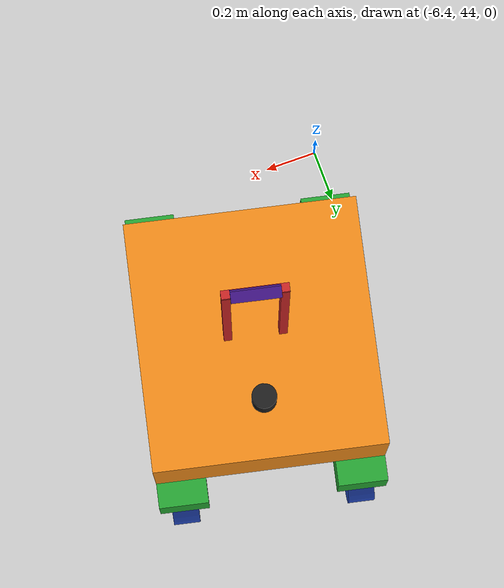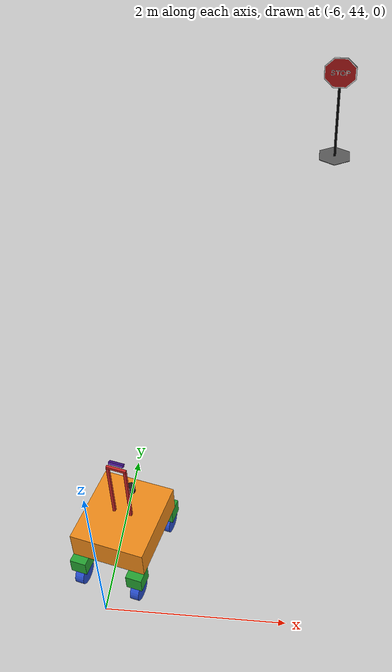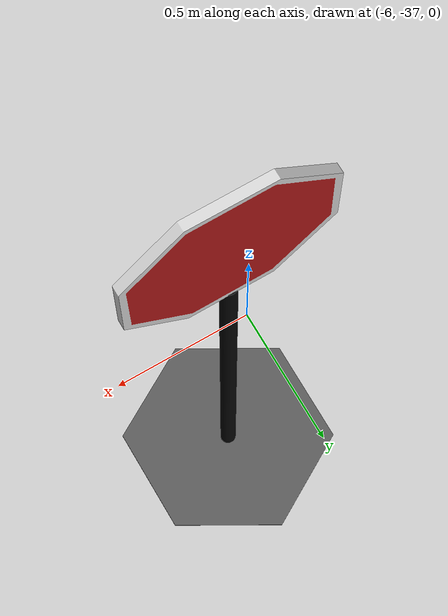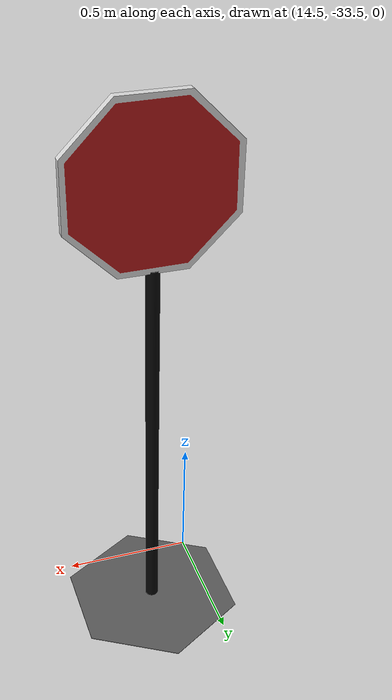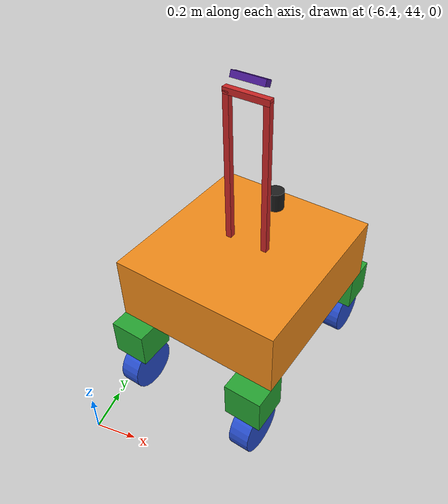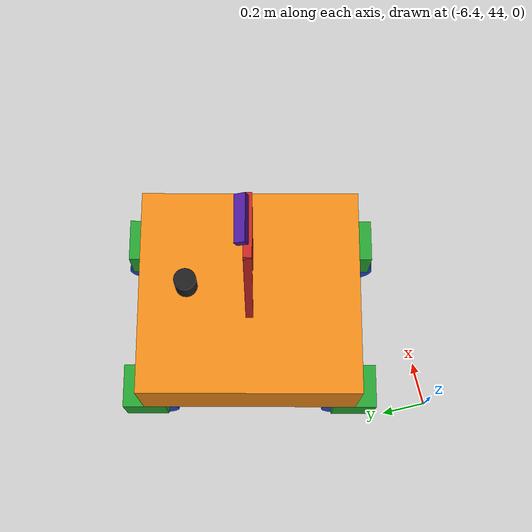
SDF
<sdf version="1.7">
 <world name="self_drive_v1">
  <physics type="ode">
   <max_step_size>0.00625</max_step_size>
   <real_time_factor>1</real_time_factor>
   <real_time_update_rate>160</real_time_update_rate>
  </physics>
  <light name="user_directional_light_0" type="directional">
   <pose>0 -60 1 1 -0 0</pose>
   <diffuse>0.5 0.5 0.5 1</diffuse>
   <specular>0.1 0.1 0.1 1</specular>
   <direction>0.1 0.1 -0.9</direction>
   <attenuation>
    <range>20</range>
    <constant>0.5</constant>
    <linear>0.01</linear>
    <quadratic>0.001</quadratic>
   </attenuation>
   <spot><inner_angle>0</inner_angle><outer_angle>0</outer_angle><falloff>0</falloff></spot>
  </light>
  <light name="user_directional_light_1" type="directional">
   <pose>40 0 1 -1.68478 -0.346199 -2.21355</pose>
   <diffuse>0.5 0.5 0.5 1</diffuse>
   <specular>0.1 0.1 0.1 1</specular>
   <direction>0.1 0.1 -0.9</direction>
   <attenuation>
    <range>20</range>
    <constant>0.5</constant>
    <linear>0.01</linear>
    <quadratic>0.001</quadratic>
   </attenuation>
   <spot><inner_angle>0</inner_angle><outer_angle>0</outer_angle><falloff>0</falloff></spot>
  </light>
  <light name="user_directional_light_2" type="directional">
   <pose>0 68 1 -2.05749 0 0</pose>
   <diffuse>0.5 0.5 0.5 1</diffuse>
   <specular>0.1 0.1 0.1 1</specular>
   <direction>0.1 0.1 -0.9</direction>
   <attenuation>
    <range>20</range>
    <constant>0.5</constant>
    <linear>0.01</linear>
    <quadratic>0.001</quadratic>
   </attenuation>
   <spot><inner_angle>0</inner_angle><outer_angle>0</outer_angle><falloff>0</falloff></spot>
  </light>
  <light name="user_directional_light_3" type="directional">
   <pose>-43 0 1 0 -1.44116 0</pose>
   <diffuse>0.5 0.5 0.5 1</diffuse>
   <specular>0.1 0.1 0.1 1</specular>
   <direction>0.1 0.1 -0.9</direction>
   <attenuation>
    <range>20</range>
    <constant>0.5</constant>
    <linear>0.01</linear>
    <quadratic>0.001</quadratic>
   </attenuation>
   <spot><inner_angle>0</inner_angle><outer_angle>0</outer_angle><falloff>0</falloff></spot>
  </light>
  <scene>
   <sky><clouds><speed>12</speed></clouds></sky>
   <shadows>1</shadows>
   <ambient>0.2 0.2 0.2 1</ambient>
   <background>1 1 1 1</background>
   <grid>0</grid>
   <origin_visual>0</origin_visual>
  </scene>
  <light name="sun" type="directional">
   <pose>0 0 10 0 -0 0</pose>
   <diffuse>0.8 0.8 0.8 1</diffuse>
   <specular>0.2 0.2 0.2 1</specular>
   <attenuation>
    <range>1000</range>
    <constant>0.9</constant>
    <linear>0.01</linear>
    <quadratic>0.001</quadratic>
   </attenuation>
   <direction>-0.5 0.1 -0.9</direction>
   <spot><inner_angle>0</inner_angle><outer_angle>0</outer_angle><falloff>0</falloff></spot>
  </light>
  <model name="igvc_ground">
   <static>1</static>
   <link name="link">
    <collision name="collision">
     <geometry><plane><normal>0 0 1</normal><size>80 128</size></plane></geometry>
     <surface><friction><ode><mu>140</mu><mu2>140</mu2></ode></friction></surface>
    </collision>
    <visual name="visual">
     <cast_shadows>0</cast_shadows>
     <geometry><plane><normal>0 0 1</normal><size>80 128</size></plane></geometry>
     <material>
      <script>
       <uri>model://igvc_ground/materials/scripts</uri>
       <uri>model://igvc_ground/materials/textures</uri>
       <name>asphalt_ground/Image</name>
      </script>
     </material>
    </visual>
   </link>
   <pose>0 0.5 0 0 -0 0</pose>
  </model>
  <gravity>0 0 -9.8</gravity>
  <magnetic_field>6e-06 2.3e-05 -4.2e-05</magnetic_field>
  <atmosphere type="adiabatic"/>
  <audio><device>default</device></audio>
  <spherical_coordinates>
   <surface_model>EARTH_WGS84</surface_model>
   <latitude_deg>0</latitude_deg>
   <longitude_deg>0</longitude_deg>
   <elevation>0</elevation>
   <heading_deg>0</heading_deg>
  </spherical_coordinates>
  <model name="sign_stop_0">
   <static>1</static>
   <link name="sign">
    <visual name="visual">
     <geometry>
      <mesh><uri>model://sign_stop/materials/meshes/sign_stop.dae</uri><scale>0.001 0.001 0.001</scale></mesh>
     </geometry>
    </visual>
    <collision name="collision">
     <geometry>
      <mesh><uri>model://sign_stop/materials/meshes/sign_stop.dae</uri><scale>0.001 0.001 0.001</scale></mesh>
     </geometry>
    </collision>
   </link>
   <pose>15.0208 -33.0904 0 0 -0 0</pose>
  </model>
  <model name="sign_stop_1">
   <static>1</static>
   <link name="sign">
    <visual name="visual">
     <geometry>
      <mesh><uri>model://sign_stop/materials/meshes/sign_stop.dae</uri><scale>0.001 0.001 0.001</scale></mesh>
     </geometry>
    </visual>
    <collision name="collision">
     <geometry>
      <mesh><uri>model://sign_stop/materials/meshes/sign_stop.dae</uri><scale>0.001 0.001 0.001</scale></mesh>
     </geometry>
    </collision>
   </link>
   <pose>-5.42713 -36.4932 0 0 -0 0</pose>
  </model>
  <model name="steve">
   <link name="link_base">
    <inertial>
     <pose>0.000968 0 0.752952 0 -0 0</pose>
     <mass>6.2</mass>
     <inertia>
      <ixx>1.11654</ixx>
      <ixy>1.0842e-19</ixy>
      <ixz>-0.00511829</ixz>
      <iyy>1.11065</iyy>
      <iyz>0</iyz>
      <izz>0.506114</izz>
     </inertia>
    </inertial>
    <collision name="link_base_collision_collision">
     <pose>0 0 0.606 0 -0 0</pose>
     <geometry><box><size>0.914 0.854 0.334</size></box></geometry>
    </collision>
    <collision name="link_base_fixed_joint_lump__link_camera_support_left_collision_collision_1">
     <pose>0 0.1 1.157 0 -0 0</pose>
     <geometry><box><size>0.03 0.03 0.768</size></box></geometry>
    </collision>
    <collision name="link_base_fixed_joint_lump__link_camera_support_right_collision_collision_2">
     <pose>0 -0.1 1.157 0 -0 0</pose>
     <geometry><box><size>0.03 0.03 0.768</size></box></geometry>
    </collision>
    <collision name="link_base_fixed_joint_lump__link_camera_support_collision_collision_3">
     <pose>0 0 1.541 0 -0 0</pose>
     <geometry><box><size>0.03 0.23 0.03</size></box></geometry>
    </collision>
    <collision name="link_base_fixed_joint_lump__link_camera_zed2i_collision_collision_4">
     <pose>0.02 0 1.606 0 0.4 0</pose>
     <geometry><box><size>0.04 0.17 0.03</size></box></geometry>
    </collision>
    <visual name="link_base_visual_visual">
     <pose>0 0 0.606 0 -0 0</pose>
     <geometry><box><size>0.914 0.854 0.334</size></box></geometry>
     <material>
      <script><name>Gazebo/Orange</name><uri>file://media/materials/scripts/gazebo.material</uri></script>
     </material>
    </visual>
    <visual name="link_base_fixed_joint_lump__link_camera_support_left_visual_visual_1">
     <pose>0 0.1 1.157 0 -0 0</pose>
     <geometry><box><size>0.03 0.03 0.768</size></box></geometry>
     <material>
      <script><name>Gazebo/Red</name><uri>file://media/materials/scripts/gazebo.material</uri></script>
     </material>
    </visual>
    <visual name="link_base_fixed_joint_lump__link_camera_support_right_visual_visual_2">
     <pose>0 -0.1 1.157 0 -0 0</pose>
     <geometry><box><size>0.03 0.03 0.768</size></box></geometry>
     <material>
      <script><name>Gazebo/Red</name><uri>file://media/materials/scripts/gazebo.material</uri></script>
     </material>
    </visual>
    <visual name="link_base_fixed_joint_lump__link_camera_support_visual_visual_3">
     <pose>0 0 1.541 0 -0 0</pose>
     <geometry><box><size>0.03 0.23 0.03</size></box></geometry>
     <material>
      <script><name>Gazebo/Red</name><uri>file://media/materials/scripts/gazebo.material</uri></script>
     </material>
    </visual>
    <visual name="link_base_fixed_joint_lump__link_camera_zed2i_visual_visual_4">
     <pose>0.02 0 1.606 0 0.4 0</pose>
     <geometry><box><size>0.04 0.17 0.03</size></box></geometry>
     <material>
      <script><name>Gazebo/Indigo</name><uri>file://media/materials/scripts/gazebo.material</uri></script>
     </material>
    </visual>
    <visual name="link_base_fixed_joint_lump__link_lidar_visual_visual_5">
     <pose>0.255 0 0.88 0 -0 0</pose>
     <geometry><cylinder><length>0.1</length><radius>0.045</radius></cylinder></geometry>
     <material>
      <script><name>Gazebo/Black</name><uri>file://media/materials/scripts/gazebo.material</uri></script>
     </material>
    </visual>
    <sensor name="stereocamera" type="depth">
     <always_on>1</always_on>
     <visualize>1</visualize>
     <camera>
      <horizontal_fov>1.9</horizontal_fov>
      <image><width>640</width><height>360</height><format>R8G8B8</format></image>
      <depth_camera><output>depths</output></depth_camera>
      <clip><near>0.5</near><far>20</far></clip>
      <noise><type>gaussian</type><mean>0</mean><stddev>0.05</stddev></noise>
     </camera>
     <plugin name="camera_controller" filename="libgazebo_ros_camera.so">
      <ros><namespace>zed_node</namespace></ros>
      <camera_name>stereocamera</camera_name>
      <frame_name>zed2i_depth</frame_name>
      <hack_baseline>0.07</hack_baseline>
     </plugin>
     <pose>0.02 0 1.606 0 0.4 0</pose>
    </sensor>
    <sensor name="imu_sensor" type="imu">
     <plugin name="imu_plugin" filename="libgazebo_ros_imu_sensor.so">
      <ros><namespace>/</namespace><remapping>~/out:=imu</remapping></ros>
      <initial_orientation_as_reference>0</initial_orientation_as_reference>
     </plugin>
     <always_on>1</always_on>
     <update_rate>40</update_rate>
     <pose>0 0 1.541 0 -0 0</pose>
    </sensor>
    <sensor name="laser" type="ray">
     <always_on>1</always_on>
     <update_rate>10</update_rate>
     <visualize>0</visualize>
     <ray>
      <scan>
       <horizontal>
        <samples>720</samples>
        <resolution>1</resolution>
        <min_angle>-3.14159</min_angle>
        <max_angle>3.14159</max_angle>
       </horizontal>
       <vertical>
        <samples>32</samples>
        <resolution>1</resolution>
        <min_angle>-0.25</min_angle>
        <max_angle>0</max_angle>
       </vertical>
      </scan>
      <range><min>0.055</min><max>200</max><resolution>0.01</resolution></range>
      <noise><type>gaussian</type><mean>0</mean><stddev>0.01</stddev></noise>
     </ray>
     <plugin name="lidar_controller" filename="libgazebo_ros_ray_sensor.so">
      <ros><remapping>~/out:=scan</remapping></ros>
      <output_type>sensor_msgs/LaserScan</output_type>
      <frame_name>link_lidar</frame_name>
     </plugin>
     <pose>0.255 0 0.88 0 -0 0</pose>
    </sensor>
   </link>
   <joint name="joint_link_link_base_wheel_holder_3" type="revolute">
    <pose relative_to="link_base">0.457 0.3345 0.439 0 -0 0</pose>
    <parent>link_base</parent>
    <child>link_wheel_holder_3</child>
    <axis>
     <xyz>0 0 1</xyz>
     <limit><lower>-3.14</lower><upper>3.14</upper><effort>10</effort><velocity>1</velocity></limit>
     <dynamics>
      <damping>10</damping>
      <friction>0.5</friction>
      <spring_reference>0</spring_reference>
      <spring_stiffness>0</spring_stiffness>
     </dynamics>
    </axis>
   </joint>
   <link name="link_wheel_holder_3">
    <pose relative_to="joint_link_link_base_wheel_holder_3">0 0 0 0 -0 0</pose>
    <inertial>
     <pose>0 0 -0.0925 0 -0 0</pose>
     <mass>1</mass>
     <inertia><ixx>0.1</ixx><ixy>0</ixy><ixz>0</ixz><iyy>0.1</iyy><iyz>0</iyz><izz>0.1</izz></inertia>
    </inertial>
    <collision name="link_wheel_holder_3_fixed_joint_lump__llink_wheel_holder_3_collision_collision">
     <pose>0 0 -0.0925 0 -0 0</pose>
     <geometry><box><size>0.185 0.185 0.185</size></box></geometry>
    </collision>
    <visual name="link_wheel_holder_3_visual_visual">
     <pose>0 0 -0.0925 0 -0 0</pose>
     <geometry><box><size>0.185 0.185 0.185</size></box></geometry>
     <material>
      <script><name>Gazebo/Green</name><uri>file://media/materials/scripts/gazebo.material</uri></script>
     </material>
    </visual>
   </link>
   <joint name="joint_link_wheel_holder_3_link_wheel_3" type="revolute">
    <pose relative_to="link_wheel_holder_3">0 0 -0.312 0 -0 0</pose>
    <parent>link_wheel_holder_3</parent>
    <child>link_wheel_3</child>
    <axis>
     <xyz>0 1 0</xyz>
     <limit><effort>10000</effort><velocity>1000</velocity><lower>-1e+16</lower><upper>1e+16</upper></limit>
     <dynamics><spring_reference>0</spring_reference><spring_stiffness>0</spring_stiffness></dynamics>
    </axis>
   </joint>
   <link name="link_wheel_3">
    <pose relative_to="joint_link_wheel_holder_3_link_wheel_3">0 0 0 0 -0 0</pose>
    <inertial>
     <pose>0 0 0 1.57 -0 0</pose>
     <mass>1</mass>
     <inertia><ixx>0.1</ixx><ixy>0</ixy><ixz>0</ixz><iyy>0.1</iyy><iyz>0</iyz><izz>0.1</izz></inertia>
    </inertial>
    <collision name="link_wheel_3_collision_collision">
     <pose>0 0 0 1.57 -0 0</pose>
     <geometry><cylinder><length>0.1</length><radius>0.127</radius></cylinder></geometry>
    </collision>
    <visual name="link_wheel_3_visual_visual">
     <pose>0 0 0 1.57 -0 0</pose>
     <geometry><cylinder><length>0.1</length><radius>0.127</radius></cylinder></geometry>
     <material>
      <script><name>Gazebo/Blue</name><uri>file://media/materials/scripts/gazebo.material</uri></script>
     </material>
    </visual>
   </link>
   <joint name="joint_link_link_base_wheel_holder_4" type="revolute">
    <pose relative_to="link_base">0.457 -0.3345 0.439 0 -0 0</pose>
    <parent>link_base</parent>
    <child>link_wheel_holder_4</child>
    <axis>
     <xyz>0 0 1</xyz>
     <limit><lower>-3.14</lower><upper>3.14</upper><effort>10</effort><velocity>1</velocity></limit>
     <dynamics>
      <damping>10</damping>
      <friction>0.5</friction>
      <spring_reference>0</spring_reference>
      <spring_stiffness>0</spring_stiffness>
     </dynamics>
    </axis>
   </joint>
   <link name="link_wheel_holder_4">
    <pose relative_to="joint_link_link_base_wheel_holder_4">0 0 0 0 -0 0</pose>
    <inertial>
     <pose>0 0 -0.0925 0 -0 0</pose>
     <mass>1</mass>
     <inertia><ixx>0.1</ixx><ixy>0</ixy><ixz>0</ixz><iyy>0.1</iyy><iyz>0</iyz><izz>0.1</izz></inertia>
    </inertial>
    <collision name="link_wheel_holder_4_fixed_joint_lump__llink_wheel_holder_4_collision_collision">
     <pose>0 0 -0.0925 0 -0 0</pose>
     <geometry><box><size>0.185 0.185 0.185</size></box></geometry>
    </collision>
    <visual name="link_wheel_holder_4_visual_visual">
     <pose>0 0 -0.0925 0 -0 0</pose>
     <geometry><box><size>0.185 0.185 0.185</size></box></geometry>
     <material>
      <script><name>Gazebo/Green</name><uri>file://media/materials/scripts/gazebo.material</uri></script>
     </material>
    </visual>
   </link>
   <joint name="joint_link_wheel_holder_4_link_wheel_4" type="revolute">
    <pose relative_to="link_wheel_holder_4">0 0 -0.312 0 -0 0</pose>
    <parent>link_wheel_holder_4</parent>
    <child>link_wheel_4</child>
    <axis>
     <xyz>0 1 0</xyz>
     <limit><effort>10000</effort><velocity>1000</velocity><lower>-1e+16</lower><upper>1e+16</upper></limit>
     <dynamics><spring_reference>0</spring_reference><spring_stiffness>0</spring_stiffness></dynamics>
    </axis>
   </joint>
   <link name="link_wheel_4">
    <pose relative_to="joint_link_wheel_holder_4_link_wheel_4">0 0 0 0 -0 0</pose>
    <inertial>
     <pose>0 0 0 1.57 -0 0</pose>
     <mass>1</mass>
     <inertia><ixx>0.1</ixx><ixy>0</ixy><ixz>0</ixz><iyy>0.1</iyy><iyz>0</iyz><izz>0.1</izz></inertia>
    </inertial>
    <collision name="link_wheel_4_collision_collision">
     <pose>0 0 0 1.57 -0 0</pose>
     <geometry><cylinder><length>0.1</length><radius>0.127</radius></cylinder></geometry>
    </collision>
    <visual name="link_wheel_4_visual_visual">
     <pose>0 0 0 1.57 -0 0</pose>
     <geometry><cylinder><length>0.1</length><radius>0.127</radius></cylinder></geometry>
     <material>
      <script><name>Gazebo/Blue</name><uri>file://media/materials/scripts/gazebo.material</uri></script>
     </material>
    </visual>
   </link>
   <joint name="joint_link_link_base_wheel_holder_5" type="revolute">
    <pose relative_to="link_base">-0.457 0.3345 0.439 0 -0 0</pose>
    <parent>link_base</parent>
    <child>link_wheel_holder_5</child>
    <axis>
     <xyz>0 0 1</xyz>
     <limit><lower>-3.14</lower><upper>3.14</upper><effort>10</effort><velocity>1</velocity></limit>
     <dynamics>
      <damping>10</damping>
      <friction>0.5</friction>
      <spring_reference>0</spring_reference>
      <spring_stiffness>0</spring_stiffness>
     </dynamics>
    </axis>
   </joint>
   <link name="link_wheel_holder_5">
    <pose relative_to="joint_link_link_base_wheel_holder_5">0 0 0 0 -0 0</pose>
    <inertial>
     <pose>0 0 -0.0925 0 -0 0</pose>
     <mass>1</mass>
     <inertia><ixx>0.1</ixx><ixy>0</ixy><ixz>0</ixz><iyy>0.1</iyy><iyz>0</iyz><izz>0.1</izz></inertia>
    </inertial>
    <collision name="link_wheel_holder_5_fixed_joint_lump__llink_wheel_holder_5_collision_collision">
     <pose>0 0 -0.0925 0 -0 0</pose>
     <geometry><box><size>0.185 0.185 0.185</size></box></geometry>
    </collision>
    <visual name="link_wheel_holder_5_visual_visual">
     <pose>0 0 -0.0925 0 -0 0</pose>
     <geometry><box><size>0.185 0.185 0.185</size></box></geometry>
     <material>
      <script><name>Gazebo/Green</name><uri>file://media/materials/scripts/gazebo.material</uri></script>
     </material>
    </visual>
   </link>
   <joint name="joint_link_wheel_holder_5_link_wheel_5" type="revolute">
    <pose relative_to="link_wheel_holder_5">0 0 -0.312 0 -0 0</pose>
    <parent>link_wheel_holder_5</parent>
    <child>link_wheel_5</child>
    <axis>
     <xyz>0 1 0</xyz>
     <limit><effort>10000</effort><velocity>1000</velocity><lower>-1e+16</lower><upper>1e+16</upper></limit>
     <dynamics><spring_reference>0</spring_reference><spring_stiffness>0</spring_stiffness></dynamics>
    </axis>
   </joint>
   <link name="link_wheel_5">
    <pose relative_to="joint_link_wheel_holder_5_link_wheel_5">0 0 0 0 -0 0</pose>
    <inertial>
     <pose>0 0 0 1.57 -0 0</pose>
     <mass>1</mass>
     <inertia><ixx>0.1</ixx><ixy>0</ixy><ixz>0</ixz><iyy>0.1</iyy><iyz>0</iyz><izz>0.1</izz></inertia>
    </inertial>
    <collision name="link_wheel_5_collision_collision">
     <pose>0 0 0 1.57 -0 0</pose>
     <geometry><cylinder><length>0.1</length><radius>0.127</radius></cylinder></geometry>
    </collision>
    <visual name="link_wheel_5_visual_visual">
     <pose>0 0 0 1.57 -0 0</pose>
     <geometry><cylinder><length>0.1</length><radius>0.127</radius></cylinder></geometry>
     <material>
      <script><name>Gazebo/Blue</name><uri>file://media/materials/scripts/gazebo.material</uri></script>
     </material>
    </visual>
   </link>
   <joint name="joint_link_link_base_wheel_holder_6" type="revolute">
    <pose relative_to="link_base">-0.457 -0.3345 0.439 0 -0 0</pose>
    <parent>link_base</parent>
    <child>link_wheel_holder_6</child>
    <axis>
     <xyz>0 0 1</xyz>
     <limit><lower>-3.14</lower><upper>3.14</upper><effort>10</effort><velocity>1</velocity></limit>
     <dynamics>
      <damping>10</damping>
      <friction>0.5</friction>
      <spring_reference>0</spring_reference>
      <spring_stiffness>0</spring_stiffness>
     </dynamics>
    </axis>
   </joint>
   <link name="link_wheel_holder_6">
    <pose relative_to="joint_link_link_base_wheel_holder_6">0 0 0 0 -0 0</pose>
    <inertial>
     <pose>0 0 -0.0925 0 -0 0</pose>
     <mass>1</mass>
     <inertia><ixx>0.1</ixx><ixy>0</ixy><ixz>0</ixz><iyy>0.1</iyy><iyz>0</iyz><izz>0.1</izz></inertia>
    </inertial>
    <collision name="link_wheel_holder_6_fixed_joint_lump__llink_wheel_holder_6_collision_collision">
     <pose>0 0 -0.0925 0 -0 0</pose>
     <geometry><box><size>0.185 0.185 0.185</size></box></geometry>
    </collision>
    <visual name="link_wheel_holder_6_visual_visual">
     <pose>0 0 -0.0925 0 -0 0</pose>
     <geometry><box><size>0.185 0.185 0.185</size></box></geometry>
     <material>
      <script><name>Gazebo/Green</name><uri>file://media/materials/scripts/gazebo.material</uri></script>
     </material>
    </visual>
   </link>
   <joint name="joint_link_wheel_holder_6_link_wheel_6" type="revolute">
    <pose relative_to="link_wheel_holder_6">0 0 -0.312 0 -0 0</pose>
    <parent>link_wheel_holder_6</parent>
    <child>link_wheel_6</child>
    <axis>
     <xyz>0 1 0</xyz>
     <limit><effort>10000</effort><velocity>1000</velocity><lower>-1e+16</lower><upper>1e+16</upper></limit>
     <dynamics><spring_reference>0</spring_reference><spring_stiffness>0</spring_stiffness></dynamics>
    </axis>
   </joint>
   <link name="link_wheel_6">
    <pose relative_to="joint_link_wheel_holder_6_link_wheel_6">0 0 0 0 -0 0</pose>
    <inertial>
     <pose>0 0 0 1.57 -0 0</pose>
     <mass>1</mass>
     <inertia><ixx>0.1</ixx><ixy>0</ixy><ixz>0</ixz><iyy>0.1</iyy><iyz>0</iyz><izz>0.1</izz></inertia>
    </inertial>
    <collision name="link_wheel_6_collision_collision">
     <pose>0 0 0 1.57 -0 0</pose>
     <geometry><cylinder><length>0.1</length><radius>0.127</radius></cylinder></geometry>
    </collision>
    <visual name="link_wheel_6_visual_visual">
     <pose>0 0 0 1.57 -0 0</pose>
     <geometry><cylinder><length>0.1</length><radius>0.127</radius></cylinder></geometry>
     <material>
      <script><name>Gazebo/Blue</name><uri>file://media/materials/scripts/gazebo.material</uri></script>
     </material>
    </visual>
   </link>
   <static>0</static>
   <plugin name="ackermann_drive" filename="libackerman_drive_plugin.so">
    <updateRate>20</updateRate>
    <commandTopic>cmd_vel</commandTopic>
    <odometryTopic>odom</odometryTopic>
    <odometryFrame>odom</odometryFrame>
    <robotBaseFrame>link_chassis</robotBaseFrame>
    <wheelRadius>0.127</wheelRadius>
    <wheelSeperation>0.914</wheelSeperation>
    <wheelBase>0.854</wheelBase>
    <front_left_wheel_joint>joint_link_wheel_holder_3_link_wheel_3</front_left_wheel_joint>
    <front_right_wheel_joint>joint_link_wheel_holder_4_link_wheel_4</front_right_wheel_joint>
    <back_left_wheel_joint>joint_link_wheel_holder_5_link_wheel_5</back_left_wheel_joint>
    <back_right_wheel_joint>joint_link_wheel_holder_6_link_wheel_6</back_right_wheel_joint>
    <front_left_stepper_joint>joint_link_link_base_wheel_holder_3</front_left_stepper_joint>
    <front_right_stepper_joint>joint_link_link_base_wheel_holder_4</front_right_stepper_joint>
    <back_left_stepper_joint>joint_link_link_base_wheel_holder_5</back_left_stepper_joint>
    <back_right_stepper_joint>joint_link_link_base_wheel_holder_6</back_right_stepper_joint>
   </plugin>
   <pose>-5.8828 44.7318 4.1e-05 0.000112 1e-06 1.34666</pose>
  </model>
  <model name="sign_stop_2">
   <static>1</static>
   <link name="sign">
    <visual name="visual">
     <geometry>
      <mesh><uri>model://sign_stop/materials/meshes/sign_stop.dae</uri><scale>0.001 0.001 0.001</scale></mesh>
     </geometry>
    </visual>
    <collision name="collision">
     <geometry>
      <mesh><uri>model://sign_stop/materials/meshes/sign_stop.dae</uri><scale>0.001 0.001 0.001</scale></mesh>
     </geometry>
    </collision>
   </link>
   <pose>-3.20511 53.9763 0 0 -0 0</pose>
  </model>
 </world>
</sdf>
